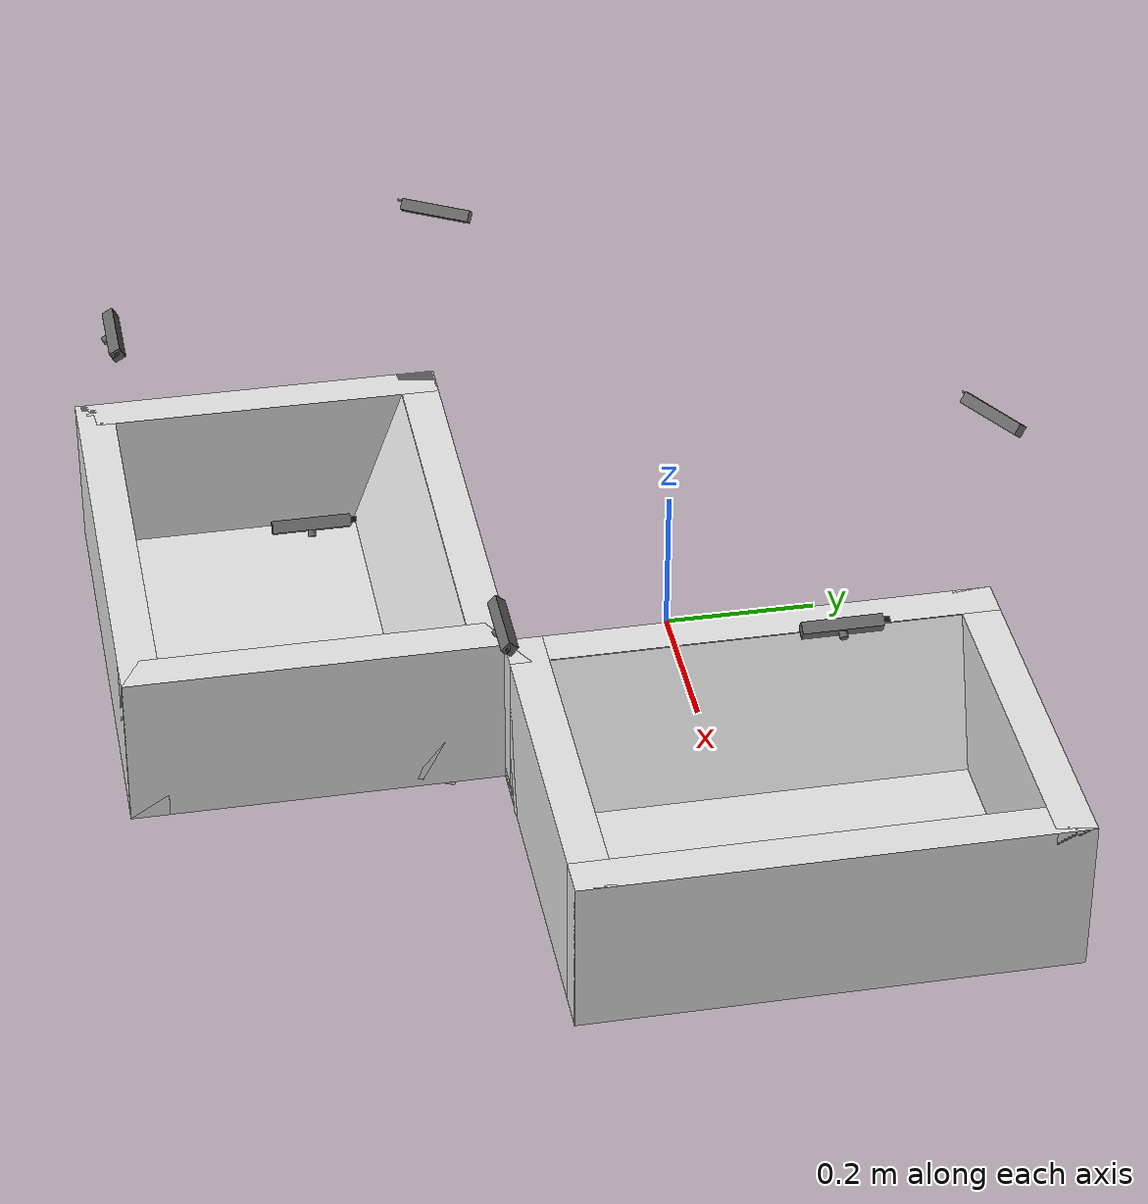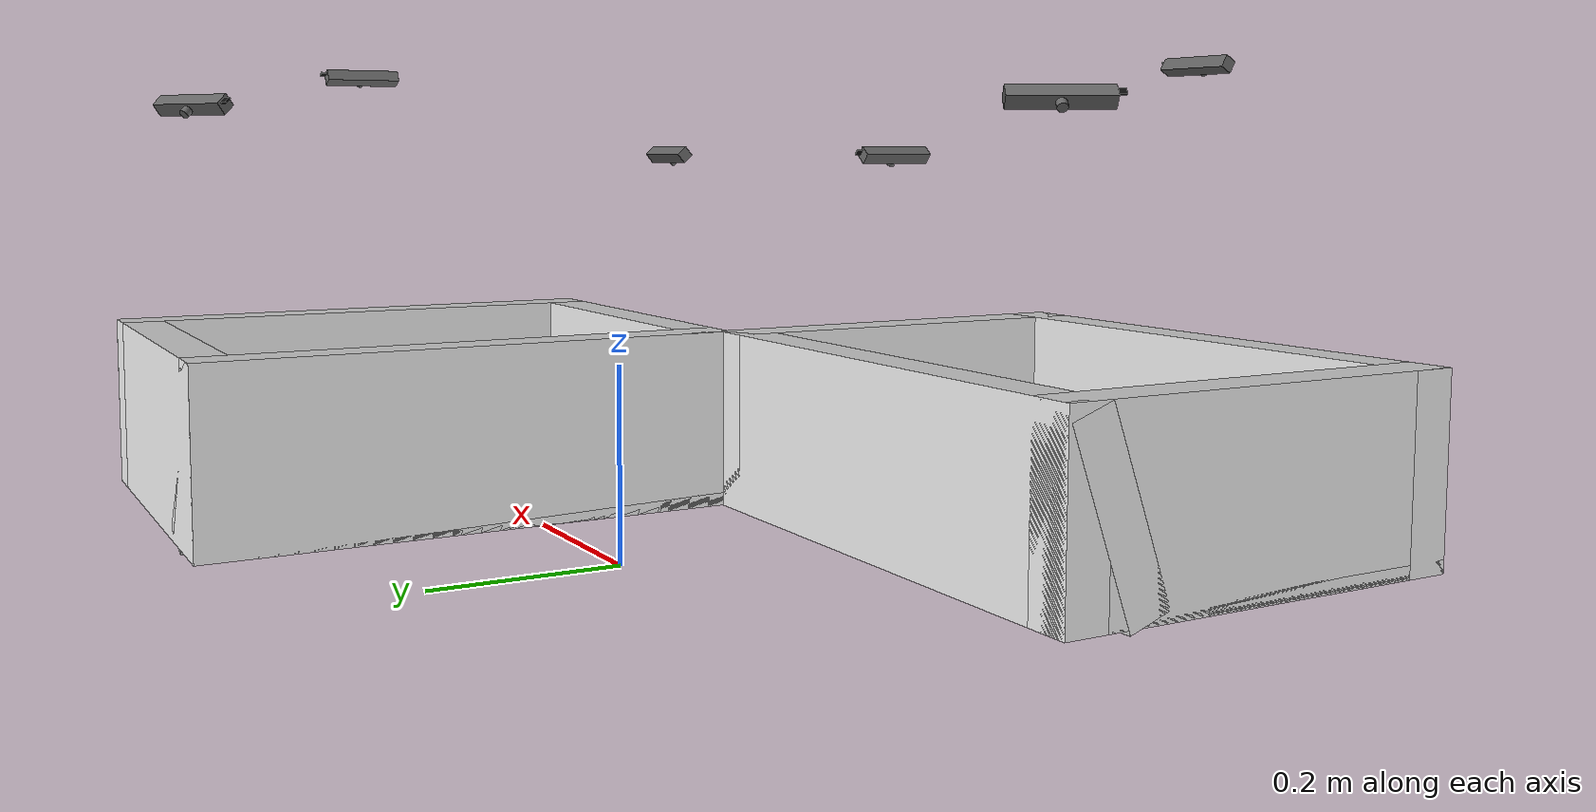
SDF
<?xml version="1.0"?>
<sdf version="1.9">
  <model name="TwoBinsWCameras">
    <include>
      <pose degrees="true">-0.05, -0.5, -0.015, 0, 0, 90</pose>
      <uri>package://drake_models/manipulation_station/bin.sdf</uri>
      <name>bin0</name>
    </include>
    <joint name="weld0" type="fixed">
      <parent>world</parent>
      <child>bin0</child>
    </joint>
    <include>
      <pose degrees="true">0.5, 0.05, -0.015, 0, 0, 180</pose>
      <uri>package://drake_models/manipulation_station/bin.sdf</uri>
      <name>bin1</name>
    </include>
    <joint name="weld1" type="fixed">
      <parent>world</parent>
      <child>bin1</child>
    </joint>

    <include>
      <pose degrees="true">.25, -.5, .4, -130.0, 0, 90.0</pose>
      <uri>package://manipulation/camera_box.sdf</uri>
      <name>camera0</name>
    </include>
    <joint name="camera0_weld" type="fixed">
      <parent>world</parent>
      <child>camera0</child>
    </joint>

    <include>
      <pose degrees="true">-0.05, -.7, .5, -150., 0, 0.0</pose>
      <uri>package://manipulation/camera_box.sdf</uri>
      <name>camera1</name>
    </include>
    <joint name="camera1_weld" type="fixed">
      <parent>world</parent>
      <child>camera1</child>
    </joint>

    <include>
      <pose degrees="true">-.35, -.25, .45, -140., 0, -120.0</pose>
      <uri>package://manipulation/camera_box.sdf</uri>
      <name>camera2</name>
    </include>
    <joint name="camera2_weld" type="fixed">
      <parent>world</parent>
      <child>camera2</child>
    </joint>

    <include>
      <pose degrees="true">.5, -.3, .4, -130.0, 0, 0.0</pose>
      <uri>package://manipulation/camera_box.sdf</uri>
      <name>camera3</name>
    </include>
    <joint name="camera3_weld" type="fixed">
      <parent>world</parent>
      <child>camera3</child>
    </joint>

    <include>
      <pose degrees="true">.7, 0.05, .5, -150., 0, 90.0</pose>
      <uri>package://manipulation/camera_box.sdf</uri>
      <name>camera4</name>
    </include>
    <joint name="camera4_weld" type="fixed">
      <parent>world</parent>
      <child>camera4</child>
    </joint>

    <include>
      <pose degrees="true">.25, .35, .45, -140., 0, -150.0</pose>
      <uri>package://manipulation/camera_box.sdf</uri>
      <name>camera5</name>
    </include>
    <joint name="camera5_weld" type="fixed">
      <parent>world</parent>
      <child>camera5</child>
    </joint>

  </model>
</sdf>

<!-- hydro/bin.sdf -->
<sdf version="1.7">
  <model name="bin_model">
    <!--
    Axes:
      +X - Pointing towards front (slope)
      +Y - Pointing to left side
      +Z - Up
    Origin:
      (0, 0, 0) at the center bottom of the bin
    -->
    <link name="bin_base">
      <inertial>
        <mass>18.70</mass>
        <inertia>
          <ixx>0.79</ixx>
          <ixy>0</ixy>
          <ixz>0</ixz>
          <iyy>0.53</iyy>
          <iyz>0</iyz>
          <izz>1.2</izz>
        </inertia>
      </inertial>
      <visual name="visual">
        <pose>0.22 0 0.105 0 0 0</pose>
        <geometry>
          <box>
            <size>0.05 0.63 0.21</size>
          </box>
        </geometry>
        <material>
          <diffuse>0.9 0.9 0.9 1.0</diffuse>
        </material>
      </visual>
      <collision name="front">
        <pose>0.22 0 0.105 0 0 0</pose>
        <geometry>
          <box>
            <size>0.05 0.63 0.21</size>
          </box>
        </geometry>
        <drake:proximity_properties>
          <drake:compliant_hydroelastic/>
          <drake:hydroelastic_modulus>1.0e6</drake:hydroelastic_modulus>
        </drake:proximity_properties>
      </collision>
      <visual name="slope">
        <pose>0.182 0 0.102 0 0.35 0</pose>
        <geometry>
          <box>
            <size>0.05 0.63 0.21</size>
          </box>
        </geometry>
        <material>
          <diffuse>0.9 0.9 0.9 1.0</diffuse>
        </material>
      </visual>
      <collision name="slope">
        <pose>0.182 0 0.102 0 0.35 0</pose>
        <geometry>
          <box>
            <size>0.05 0.63 0.21</size>
          </box>
        </geometry>
        <drake:proximity_properties>
          <drake:compliant_hydroelastic/>
          <drake:hydroelastic_modulus>1.0e6</drake:hydroelastic_modulus>
        </drake:proximity_properties>
      </collision>
      <visual name="back">
        <pose>-0.22 0 0.105 0 0 0</pose>
        <geometry>
          <box>
            <size>0.05 0.63 0.21</size>
          </box>
        </geometry>
        <material>
          <diffuse>0.9 0.9 0.9 1.0</diffuse>
        </material>
      </visual>
      <collision name="back">
        <pose>-0.22 0 0.105 0 0 0</pose>
        <geometry>
          <box>
            <size>0.05 0.63 0.21</size>
          </box>
        </geometry>
        <drake:proximity_properties>
          <drake:compliant_hydroelastic/>
          <drake:hydroelastic_modulus>1.0e6</drake:hydroelastic_modulus>
        </drake:proximity_properties>
      </collision>
      <visual name="left">
        <pose>0 0.29 0.105 0 0 0</pose>
        <geometry>
          <box>
            <size>0.49 0.05 0.21</size>
          </box>
        </geometry>
        <material>
          <diffuse>0.9 0.9 0.9 1.0</diffuse>
        </material>
      </visual>
      <collision name="left">
        <pose>0 0.29 0.105 0 0 0</pose>
        <geometry>
          <box>
            <size>0.49 0.05 0.21</size>
          </box>
        </geometry>
        <drake:proximity_properties>
          <drake:compliant_hydroelastic/>
          <drake:hydroelastic_modulus>1.0e6</drake:hydroelastic_modulus>
        </drake:proximity_properties>
      </collision>
      <visual name="right">
        <pose>0 -0.29 0.105 0 0 0</pose>
        <geometry>
          <box>
            <size>0.49 0.05 0.21</size>
          </box>
        </geometry>
        <material>
          <diffuse>0.9 0.9 0.9 1.0</diffuse>
        </material>
      </visual>
      <collision name="right">
        <pose>0 -0.29 0.105 0 0 0</pose>
        <geometry>
          <box>
            <size>0.49 0.05 0.21</size>
          </box>
        </geometry>
        <drake:proximity_properties>
          <drake:compliant_hydroelastic/>
          <drake:hydroelastic_modulus>1.0e6</drake:hydroelastic_modulus>
        </drake:proximity_properties>
      </collision>
      <visual name="bottom">
        <pose>0.0 0.0 0.0075 0 0 0</pose>
        <geometry>
          <box>
            <size>0.49 0.63 0.015</size>
          </box>
        </geometry>
        <material>
          <diffuse>0.9 0.9 0.9 1.0</diffuse>
        </material>
      </visual>
      <collision name="bottom">
        <pose>0.0 0.0 0.0075 0 0 0</pose>
        <geometry>
          <box>
            <size>0.49 0.63 0.015</size>
          </box>
        </geometry>
        <drake:proximity_properties>
          <drake:compliant_hydroelastic/>
          <drake:hydroelastic_modulus>1.0e6</drake:hydroelastic_modulus>
        </drake:proximity_properties>
      </collision>
    </link>
    <frame name="bin_front_top_center">
      <pose relative_to="bin_base">0.22 0 0.21 0 0 0</pose>
    </frame>
  </model>
</sdf>

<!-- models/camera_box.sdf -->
<sdf version="1.7">
  <model name="camera_box">
    <link name="base">
      <inertial>
        <pose>0 0 0.025 0 0 0 </pose>
        <mass>0.028</mass>
        <inertia>
          <ixx>1.17e-5</ixx>
          <ixy>0</ixy>
          <ixz>0</ixz>
          <iyy>1.9e-5</iyy>
          <iyz>0</iyz>
          <izz>1.9e-5</izz>
        </inertia>
      </inertial>
      <visual name="base">
        <pose>0 0 -0.0075 0 0 0</pose>
        <geometry>
          <box>
            <size>.095 .015 .015</size>
          </box>
        </geometry>
        <material>
          <diffuse>.4 .4 .4 1.</diffuse>
        </material>
      </visual>
      <visual name="cable">
        <pose>0.05 0 -0.0125 0 0 0</pose>
        <geometry>
          <box>
            <size>.01 .0075 .002</size>
          </box>
        </geometry>
        <material>
          <diffuse>.05 .05 .05 1.</diffuse>
        </material>
      </visual>
      <visual name="tripod_mount">
        <pose>0 0.01 -0.0075 1.57 0 0</pose>
        <geometry>
          <cylinder>
            <radius>0.005</radius>
            <length>0.01</length>
          </cylinder>
        </geometry>
        <material>
          <diffuse>.4 .4 .4 1.</diffuse>
        </material>
      </visual>
      <collision name="base">
        <pose>0 0 -0.0075 0 0 0</pose>
        <geometry>
          <box>
            <size>.095 .015 .015</size>
          </box>
        </geometry>
      </collision>
    </link>
  </model>
</sdf>
